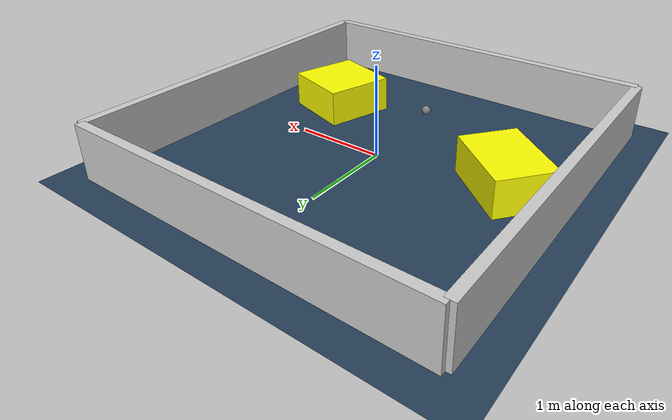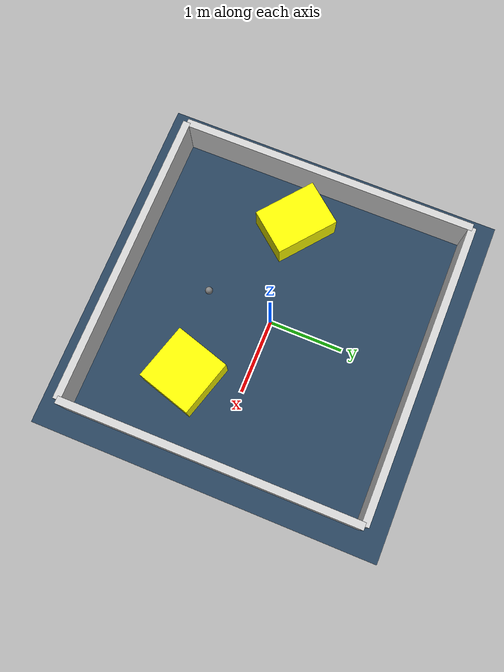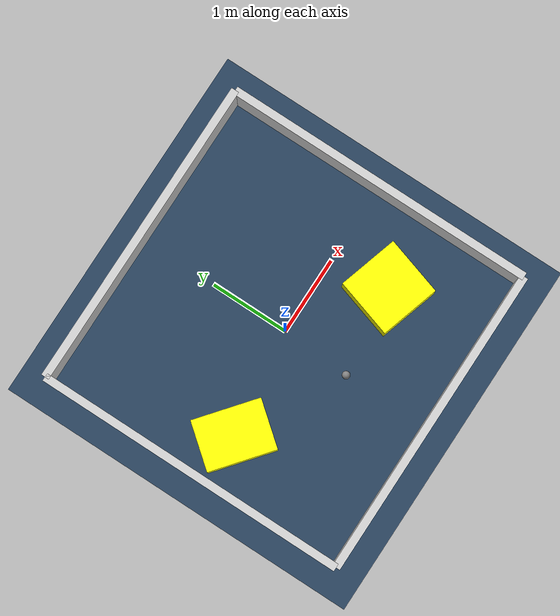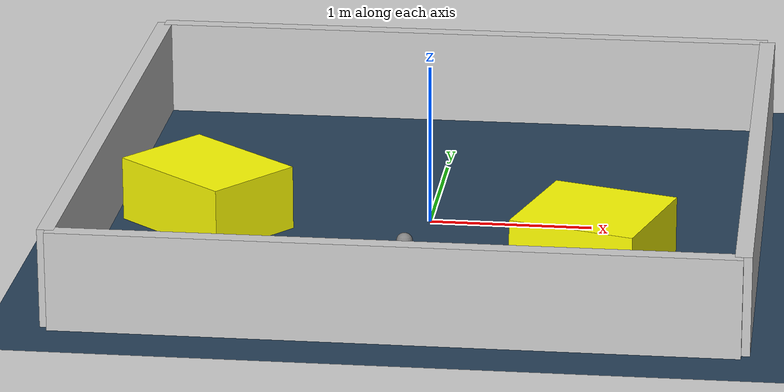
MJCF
<?xml version="1.0" ?>
<mujoco model="generated_environment">
  <option timestep="0.01" integrator="RK4" cone="elliptic"/>
  <default>
    <geom density="1"/>
  </default>
  <asset>
    <texture builtin="gradient" height="3072" rgb1="0.3 0.5 0.7" rgb2="0 0 0" type="skybox" width="512"/>
    <texture builtin="checker" height="300" mark="edge" markrgb="0.8 0.8 0.8" name="groundplane" rgb1="0.2 0.3 0.4" rgb2="0.1 0.2 0.3" type="2d" width="300"/>
    <material name="groundplane" reflectance="0.2" texrepeat="5 5" texture="groundplane" texuniform="true"/>
    <material name="robot" rgba="0.0 1.0 0.0 1"/>
  </asset>
  <worldbody>
    <light dir="0 0 -1" directional="true" pos="0 0 1.5"/>
    <geom condim="4" friction="1.0 0.005 0.001" material="groundplane" name="floor" size="0 0 0.05" type="plane"/>
    <body name="walls">
      <geom name="wall_1" condim="4" pos="-2.0 0.0 0.3" rgba="0.800000011920929 0.800000011920929 0.800000011920929 1.0" size="0.05 2.0 0.3" type="box"/>
      <geom name="wall_2" condim="4" pos="2.0 0.0 0.3" rgba="0.800000011920929 0.800000011920929 0.800000011920929 1.0" size="0.05 2.0 0.3" type="box"/>
      <geom name="wall_3" condim="4" pos="0.0 -2.0 0.3" rgba="0.800000011920929 0.800000011920929 0.800000011920929 1.0" size="2.0 0.05 0.3" type="box"/>
      <geom name="wall_4" condim="4" pos="0.0 2.0 0.3" rgba="0.800000011920929 0.800000011920929 0.800000011920929 1.0" size="2.0 0.05 0.3" type="box"/>
    </body>
    <body name="robot">
      <joint name="joint_x" type="slide" pos="0 0 0" axis="1 0 0"/>
      <joint name="joint_y" type="slide" pos="0 0 0" axis="0 1 0"/>
      <geom name="robot" type="sphere" pos="-0.056260235552117566 -0.8869508386010052 0.2" size="0.05" mass="5." friction="1.0 0.005 0.0001" condim="4"/>
      <site name="sensor_ball"/>
    </body>
    <body name="obstacle_1_movable">
      <geom name="obstacle_1_movable" condim="4" pos="-1.3622312503094405 -0.18148631634777868 0.2" euler="0 0 231.0489001706267" friction="1.0 0.005 0.001" rgba="1 1 0 1" size="0.3179145486381233 0.4316132957884944 0.2" type="box" mass="0.1"/>
      <joint type="free"/>
    </body>
    <body name="obstacle_2_movable">
      <geom name="obstacle_2_movable" condim="4" pos="1.0633447619957925 -0.7499110039913491 0.2" euler="0 0 253.1382436188168" friction="1.0 0.005 0.001" rgba="1 1 0 1" size="0.38236637175204535 0.3888909344154774 0.2" type="box" mass="0.1"/>
      <joint type="free"/>
    </body>
  </worldbody>
  <actuator>
    <motor name="actuator_x" joint="joint_x" gear="1" ctrlrange="-1 1"/>
    <motor name="actuator_y" joint="joint_y" gear="1" ctrlrange="-1 1"/>
  </actuator>
</mujoco>
